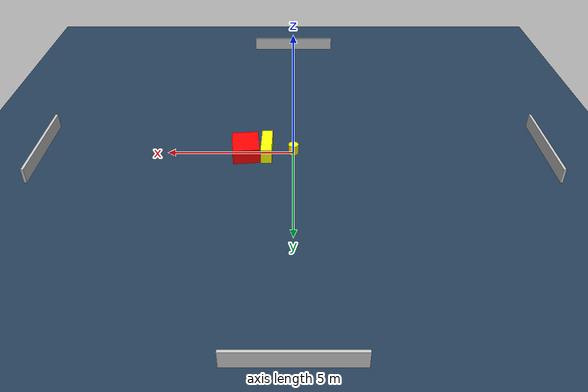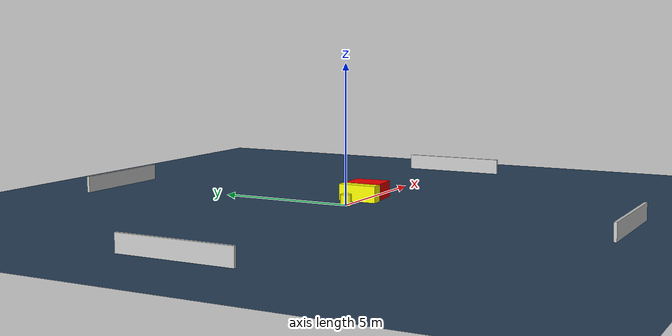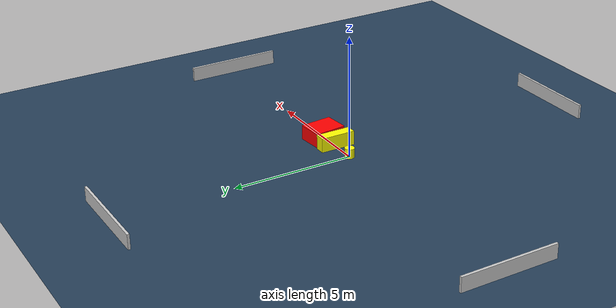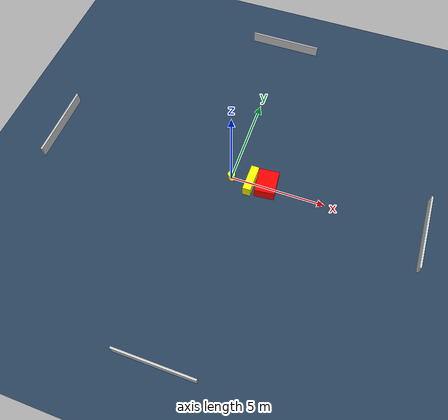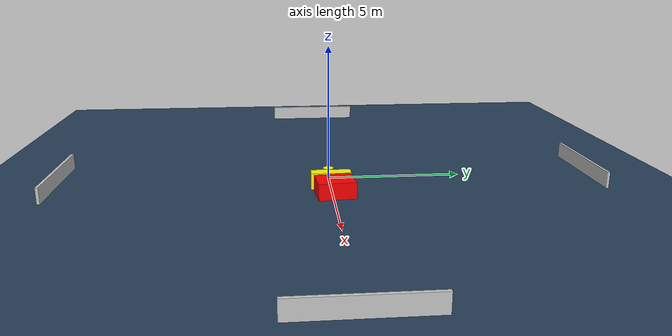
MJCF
<?xml version="1.0" ?>
<mujoco model="generated_environment">
  <option timestep="0.01" integrator="RK4" cone="elliptic"/>
  <default>
    <geom density="1"/>
  </default>
  <asset>
    <texture builtin="gradient" height="3072" name="skybox" rgb1="0.3 0.5 0.7" rgb2="0 0 0" type="skybox" width="512"/>
    <texture builtin="checker" height="300" name="groundplane" rgb1="0.2 0.3 0.4" rgb2="0.1 0.2 0.3" type="2d" width="300"/>
    <material name="groundplane" reflectance="0.2" texrepeat="5 5" texture="groundplane"/>
  </asset>
  <worldbody>
    <light dir="0 0 -1" directional="true" pos="0 0 1.5"/>
    <geom condim="3" friction="0.5 0.005 0.001" material="groundplane" name="floor" pos="0 0 0" size="0 0 0.05" type="plane"/>
    <body name="walls">
      <geom name="wall_1" condim="4" pos="-10.0 0.0 0.3" rgba="0.800000011920929 0.800000011920929 0.800000011920929 1.0" size="0.05 2.0 0.3" type="box"/>
      <geom name="wall_2" condim="4" pos="10.0 0.0 0.3" rgba="0.800000011920929 0.800000011920929 0.800000011920929 1.0" size="0.05 2.0 0.3" type="box"/>
      <geom name="wall_3" condim="4" pos="0.0 -10.0 0.3" rgba="0.800000011920929 0.800000011920929 0.800000011920929 1.0" size="2.0 0.05 0.3" type="box"/>
      <geom name="wall_4" condim="4" pos="0.0 10.0 0.3" rgba="0.800000011920929 0.800000011920929 0.800000011920929 1.0" size="2.0 0.05 0.3" type="box"/>
    </body>
    <body name="robot">
      <joint name="joint_x" type="slide" pos="0 0 0" axis="1 0 0"/>
      <joint name="joint_y" type="slide" pos="0 0 0" axis="0 1 0"/>
      <geom name="robot" type="cylinder" pos="0.0 0.0 0.2" size="0.2 0.2 0.0" mass="5.0" friction="1.0 0.005 0.0001" condim="4" rgba="1.0 1.0 0.0 1.0"/>
    </body>
    <body name="obstacle_1_movable">
      <geom name="obstacle_1_movable" condim="4" pos="1.0558395988434317 0.005733151162521481 0.3" euler="0 0 269.23688441494613" friction="0.0 0.005 0.001" rgba="1.0 1.0 0.0 1.0" size="0.7248889265721039 0.21163378669797664 0.3" type="box" mass="0.1"/>
      <joint type="free"/>
    </body>
    <body name="obstacle_2_static">
      <geom name="obstacle_2_static" condim="4" pos="1.8891602400974716 0.07871177136180703 0.3" euler="0 0 275.54438285527874" friction="0.0 0.005 0.001" rgba="1.0 0.0 0.0 1.0" size="0.6667396041248558 0.5249054722847792 0.3" type="box"/>
    </body>
  </worldbody>
  <actuator>
    <motor name="actuator_x" joint="joint_x" gear="1" ctrlrange="-1 1"/>
    <motor name="actuator_y" joint="joint_y" gear="1" ctrlrange="-1 1"/>
  </actuator>
</mujoco>
